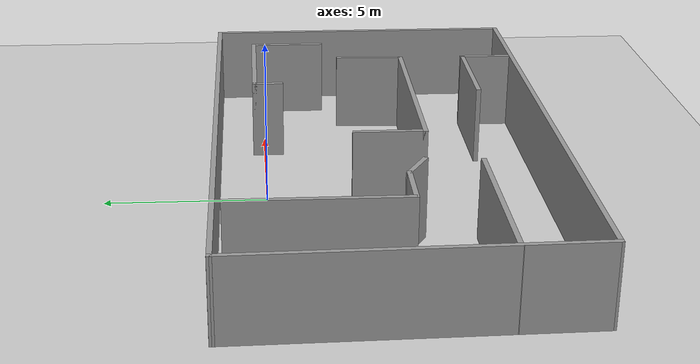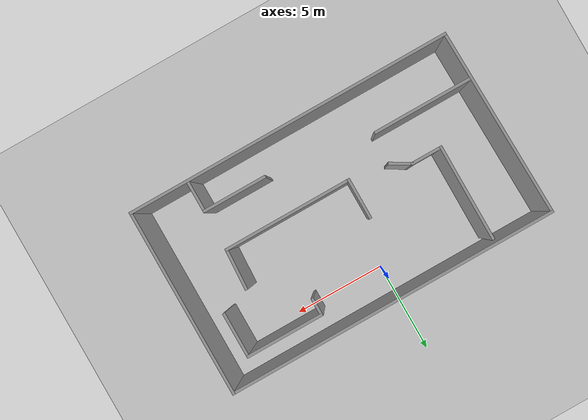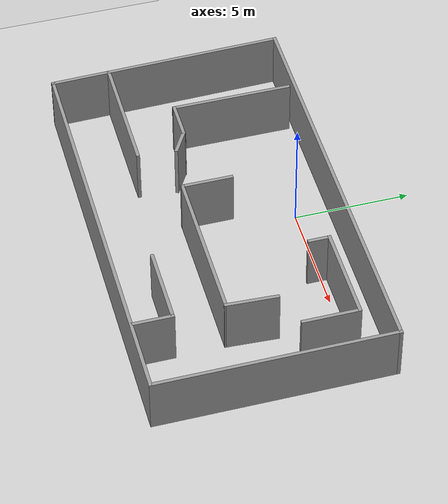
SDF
<sdf version="1.6">
 <world name="default">
  <light name="sun" type="directional">
   <pose>0 0 10 0 -0 0</pose>
   <diffuse>0.8 0.8 0.8 1</diffuse>
   <specular>0.1 0.1 0.1 1</specular>
   <attenuation>
    <range>1000</range>
    <constant>0.9</constant>
    <linear>0.01</linear>
    <quadratic>0.001</quadratic>
   </attenuation>
   <direction>-0.5 0.5 -1</direction>
  </light>
  <model name="ground_plane">
   <static>1</static>
   <link name="link">
    <collision name="collision">
     <geometry><plane><normal>0 0 1</normal><size>100 100</size></plane></geometry>
     <surface><friction><ode><mu>100</mu><mu2>50</mu2></ode></friction></surface>
    </collision>
    <visual name="visual">
     <cast_shadows>0</cast_shadows>
     <geometry><plane><normal>0 0 1</normal><size>100 100</size></plane></geometry>
     <material>
      <script><uri>file://media/materials/scripts/gazebo.material</uri><name>Gazebo/Grey</name></script>
     </material>
    </visual>
   </link>
  </model>
  <gravity>0 0 -9.8</gravity>
  <magnetic_field>6e-06 2.3e-05 -4.2e-05</magnetic_field>
  <atmosphere type="adiabatic"/>
  <physics name="default_physics" default="0" type="ode">
   <max_step_size>0.001</max_step_size>
   <real_time_factor>1</real_time_factor>
   <real_time_update_rate>1000</real_time_update_rate>
  </physics>
  <scene><ambient>0.4 0.4 0.4 1</ambient><background>0.7 0.7 0.7 1</background><shadows>1</shadows></scene>
  <spherical_coordinates>
   <surface_model>EARTH_WGS84</surface_model>
   <latitude_deg>0</latitude_deg>
   <longitude_deg>0</longitude_deg>
   <elevation>0</elevation>
   <heading_deg>0</heading_deg>
  </spherical_coordinates>
  <model name="zeen.world">
   <pose>0.378139 -3.52691 0 0 -0 0</pose>
   <link name="Wall_12">
    <collision name="Wall_12_Collision">
     <geometry><box><size>2.25 0.15 2.5</size></box></geometry>
     <pose>0 0 1.25 0 -0 0</pose>
    </collision>
    <visual name="Wall_12_Visual">
     <pose>0 0 1.25 0 -0 0</pose>
     <geometry><box><size>2.25 0.15 2.5</size></box></geometry>
     <material>
      <script><uri>file://media/materials/scripts/gazebo.material</uri><name>Gazebo/Grey</name></script>
      <ambient>1 1 1 1</ambient>
     </material>
    </visual>
    <pose>-1.09127 -0.146383 0 0 0 -1.5708</pose>
   </link>
   <link name="Wall_13">
    <collision name="Wall_13_Collision">
     <geometry><box><size>7 0.15 2.5</size></box></geometry>
     <pose>0 0 1.25 0 -0 0</pose>
    </collision>
    <visual name="Wall_13_Visual">
     <pose>0 0 1.25 0 -0 0</pose>
     <geometry><box><size>7 0.15 2.5</size></box></geometry>
     <material>
      <script><uri>file://media/materials/scripts/gazebo.material</uri><name>Gazebo/Grey</name></script>
      <ambient>1 1 1 1</ambient>
     </material>
    </visual>
    <pose>2.33373 -1.19638 0 0 -0 0</pose>
   </link>
   <link name="Wall_15">
    <collision name="Wall_15_Collision">
     <geometry><box><size>2.27293 0.15 2.5</size></box></geometry>
     <pose>0 0 1.25 0 -0 0</pose>
    </collision>
    <visual name="Wall_15_Visual">
     <pose>0 0 1.25 0 -0 0</pose>
     <geometry><box><size>2.27293 0.15 2.5</size></box></geometry>
     <material>
      <script><uri>file://media/materials/scripts/gazebo.material</uri><name>Gazebo/Grey</name></script>
      <ambient>1 1 1 1</ambient>
     </material>
    </visual>
    <pose>5.81338 -0.136326 0 0 0 -1.6223</pose>
   </link>
   <link name="Wall_17">
    <collision name="Wall_17_Collision">
     <geometry><box><size>3.5 0.15 2.5</size></box></geometry>
     <pose>0 0 1.25 0 -0 0</pose>
    </collision>
    <visual name="Wall_17_Visual">
     <pose>0 0 1.25 0 -0 0</pose>
     <geometry><box><size>3.5 0.15 2.5</size></box></geometry>
     <material>
      <script><uri>file://media/materials/scripts/gazebo.material</uri><name>Gazebo/Grey</name></script>
      <ambient>1 1 1 1</ambient>
     </material>
    </visual>
    <pose>4.08349 -3.36046 0 0 -0 0</pose>
   </link>
   <link name="Wall_18">
    <collision name="Wall_18_Collision">
     <geometry><box><size>1.75 0.15 2.5</size></box></geometry>
     <pose>0 0 1.25 0 -0 0</pose>
    </collision>
    <visual name="Wall_18_Visual">
     <pose>0 0 1.25 0 -0 0</pose>
     <geometry><box><size>1.75 0.15 2.5</size></box></geometry>
     <material>
      <script><uri>file://media/materials/scripts/gazebo.material</uri><name>Gazebo/Grey</name></script>
      <ambient>1 1 1 1</ambient>
     </material>
    </visual>
    <pose>5.75849 -4.16046 0 0 0 -1.5708</pose>
   </link>
   <link name="Wall_20">
    <collision name="Wall_20_Collision">
     <geometry><box><size>5.25 0.15 2.5</size></box></geometry>
     <pose>0 0 1.25 0 -0 0</pose>
    </collision>
    <visual name="Wall_20_Visual">
     <pose>0 0 1.25 0 -0 0</pose>
     <geometry><box><size>5.25 0.15 2.5</size></box></geometry>
     <material>
      <script><uri>file://media/materials/scripts/gazebo.material</uri><name>Gazebo/Grey</name></script>
      <ambient>1 1 1 1</ambient>
     </material>
    </visual>
    <pose>-5.77773 2.19531 0 0 0 -1.5708</pose>
   </link>
   <link name="Wall_21">
    <collision name="Wall_21_Collision">
     <geometry><box><size>1.75 0.15 2.5</size></box></geometry>
     <pose>0 0 1.25 0 -0 0</pose>
    </collision>
    <visual name="Wall_21_Visual">
     <pose>0 0 1.25 0 -0 0</pose>
     <geometry><box><size>1.75 0.15 2.5</size></box></geometry>
     <material>
      <script><uri>file://media/materials/scripts/gazebo.material</uri><name>Gazebo/Grey</name></script>
      <ambient>1 1 1 1</ambient>
     </material>
    </visual>
    <pose>-4.97773 -0.35469 0 0 -0 0</pose>
   </link>
   <link name="Wall_22">
    <collision name="Wall_22_Collision">
     <geometry><box><size>1.25 0.15 2.5</size></box></geometry>
     <pose>0 0 1.25 0 -0 0</pose>
    </collision>
    <visual name="Wall_22_Visual">
     <pose>0 0 1.25 0 -0 0</pose>
     <geometry><box><size>1.25 0.15 2.5</size></box></geometry>
     <material>
      <script><uri>file://media/materials/scripts/gazebo.material</uri><name>Gazebo/Grey</name></script>
      <ambient>1 1 1 1</ambient>
     </material>
    </visual>
    <pose>-3.70142 -0.62969 0 0 0 -0.523599</pose>
   </link>
   <link name="Wall_24">
    <collision name="Wall_24_Collision">
     <geometry><box><size>1 0.15 2.5</size></box></geometry>
     <pose>0 0 1.25 0 -0 0</pose>
    </collision>
    <visual name="Wall_24_Visual">
     <pose>0 0 1.25 0 -0 0</pose>
     <geometry><box><size>1 0.15 2.5</size></box></geometry>
     <material>
      <script><uri>file://media/materials/scripts/gazebo.material</uri><name>Gazebo/Grey</name></script>
      <ambient>1 1 1 1</ambient>
     </material>
    </visual>
    <pose>3.3136 3.42043 0 0 -0 1.5708</pose>
   </link>
   <link name="Wall_25">
    <collision name="Wall_25_Collision">
     <geometry><box><size>4.25 0.15 2.5</size></box></geometry>
     <pose>0 0 1.25 0 -0 0</pose>
    </collision>
    <visual name="Wall_25_Visual">
     <pose>0 0 1.25 0 -0 0</pose>
     <geometry><box><size>4.25 0.15 2.5</size></box></geometry>
     <material>
      <script><uri>file://media/materials/scripts/gazebo.material</uri><name>Gazebo/Grey</name></script>
      <ambient>1 1 1 1</ambient>
     </material>
    </visual>
    <pose>5.3636 3.84543 0 0 -0 0</pose>
   </link>
   <link name="Wall_26">
    <collision name="Wall_26_Collision">
     <geometry><box><size>2.5 0.15 2.5</size></box></geometry>
     <pose>0 0 1.25 0 -0 0</pose>
    </collision>
    <visual name="Wall_26_Visual">
     <pose>0 0 1.25 0 -0 0</pose>
     <geometry><box><size>2.5 0.15 2.5</size></box></geometry>
     <material>
      <script><uri>file://media/materials/scripts/gazebo.material</uri><name>Gazebo/Grey</name></script>
      <ambient>1 1 1 1</ambient>
     </material>
    </visual>
    <pose>7.4136 2.67043 0 0 0 -1.5708</pose>
   </link>
   <link name="Wall_3">
    <collision name="Wall_3_Collision">
     <geometry><box><size>17.75 0.15 2.5</size></box></geometry>
     <pose>0 0 1.25 0 -0 0</pose>
    </collision>
    <visual name="Wall_3_Visual">
     <pose>0 0 1.25 0 -0 0</pose>
     <geometry><box><size>17.75 0.15 2.5</size></box></geometry>
     <material>
      <script><uri>file://media/materials/scripts/gazebo.material</uri><name>Gazebo/Grey</name></script>
      <ambient>1 1 1 1</ambient>
     </material>
    </visual>
    <pose>0.125916 -5.05 0 0 -0 0</pose>
   </link>
   <link name="Wall_4">
    <collision name="Wall_4_Collision">
     <geometry><box><size>10.25 0.15 2.5</size></box></geometry>
     <pose>0 0 1.25 0 -0 0</pose>
    </collision>
    <visual name="Wall_4_Visual">
     <pose>0 0 1.25 0 -0 0</pose>
     <geometry><box><size>10.25 0.15 2.5</size></box></geometry>
     <material>
      <script><uri>file://media/materials/scripts/gazebo.material</uri><name>Gazebo/Grey</name></script>
      <ambient>1 1 1 1</ambient>
     </material>
    </visual>
    <pose>8.92592 0 0 0 -0 1.5708</pose>
   </link>
   <link name="Wall_5">
    <collision name="Wall_5_Collision">
     <geometry><box><size>18 0.15 2.5</size></box></geometry>
     <pose>0 0 1.25 0 -0 0</pose>
    </collision>
    <visual name="Wall_5_Visual">
     <pose>0 0 1.25 0 -0 0</pose>
     <geometry><box><size>18 0.15 2.5</size></box></geometry>
     <material>
      <script><uri>file://media/materials/scripts/gazebo.material</uri><name>Gazebo/Grey</name></script>
      <ambient>1 1 1 1</ambient>
     </material>
    </visual>
    <pose>0.000916 5.05 0 0 -0 3.14159</pose>
   </link>
   <link name="Wall_6">
    <collision name="Wall_6_Collision">
     <geometry><box><size>10.2531 0.15 2.5</size></box></geometry>
     <pose>0 0 1.25 0 -0 0</pose>
    </collision>
    <visual name="Wall_6_Visual">
     <pose>0 0 1.25 0 -0 0</pose>
     <geometry><box><size>10.2531 0.15 2.5</size></box></geometry>
     <material>
      <script><uri>file://media/materials/scripts/gazebo.material</uri><name>Gazebo/Grey</name></script>
      <ambient>1 1 1 1</ambient>
     </material>
    </visual>
    <pose>-8.79908 0 0 0 0 -1.54605</pose>
   </link>
   <link name="Wall_8">
    <collision name="Wall_8_Collision">
     <geometry><box><size>5.5 0.15 2.5</size></box></geometry>
     <pose>0 0 1.25 0 -0 0</pose>
    </collision>
    <visual name="Wall_8_Visual">
     <pose>0 0 1.25 0 -0 0</pose>
     <geometry><box><size>5.5 0.15 2.5</size></box></geometry>
     <material>
      <script><uri>file://media/materials/scripts/gazebo.material</uri><name>Gazebo/Grey</name></script>
      <ambient>1 1 1 1</ambient>
     </material>
    </visual>
    <pose>-6.05943 -2.55592 0 0 -0 0</pose>
   </link>
   <static>1</static>
  </model>
 </world>
</sdf>
